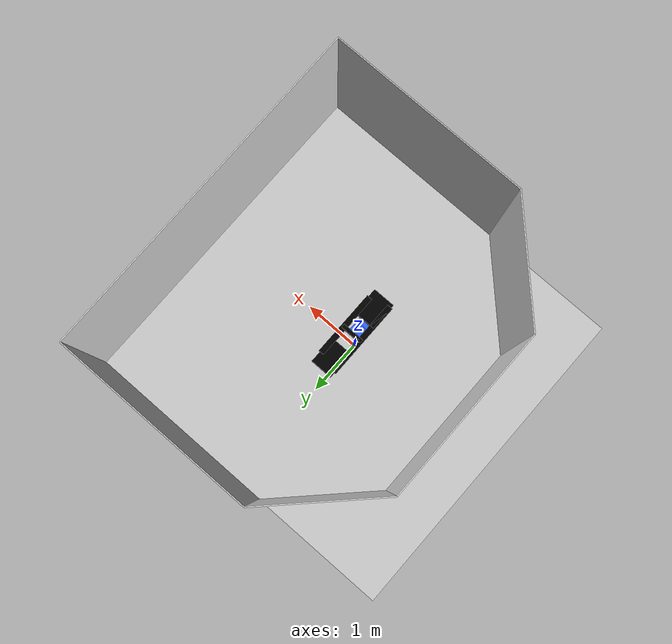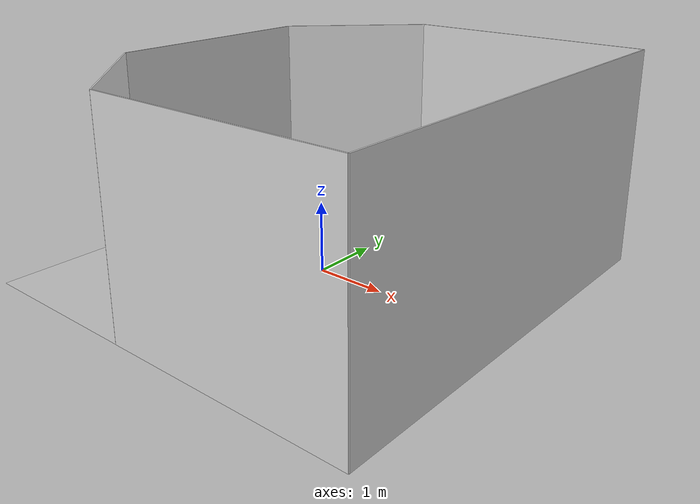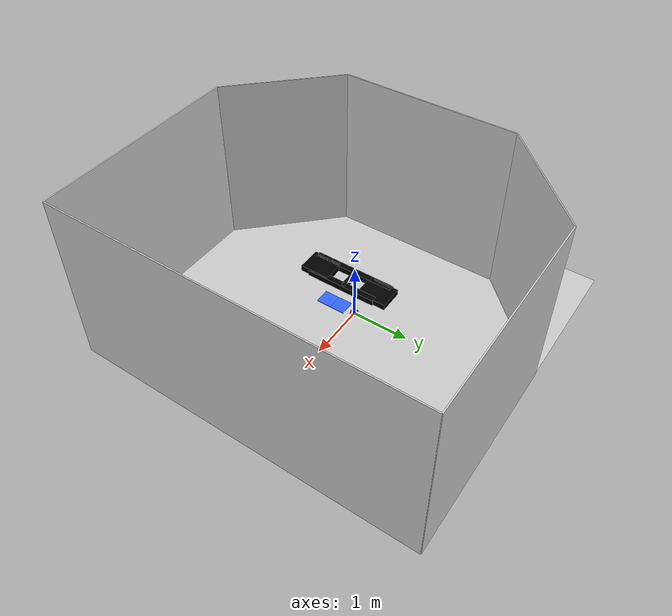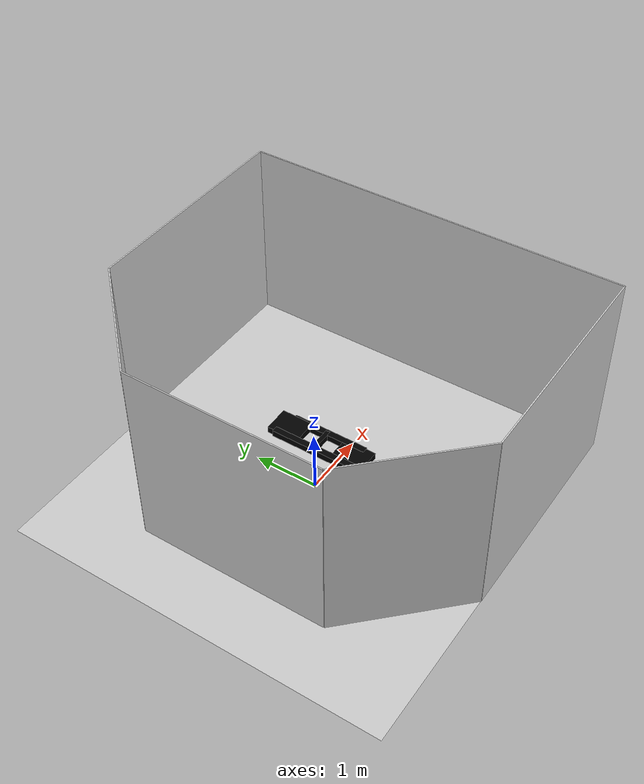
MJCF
<mujoco model="bins_arena">
  <asset>
    <texture builtin="gradient" height="256" rgb1=".9 .9 1." rgb2=".2 .3 .4" type="skybox" width="256"/>
    <texture file="../textures/light-gray-floor-tile.png" type="2d" name="texplane"/>
    <texture file="../textures/light-gray-plaster.png" type="2d" name="tex-light-gray-plaster"/>
    <material name="floorplane" reflectance="0.01" shininess="0.0" specular="0.0" texrepeat="2 2" texture="tex-light-gray-plaster" texuniform="true"/>
    <!-- steel legs -->
    <texture file="../textures/steel-brushed.png" type="cube" name="tex-steel-brushed"/>
    <material name="table_legs_metal" reflectance="0.8" shininess="0.8" texrepeat="1 1" texture="tex-steel-brushed" />
    <!-- plaster walls -->
    <texture file="../textures/light-gray-plaster.png" type="2d" name="tex-light-gray-plaster"/>
    <material name="walls_mat" reflectance="0.0" shininess="0.1" specular="0.1" texrepeat="3 3" texture="tex-light-gray-plaster" texuniform="true" />
    <!-- added table texture and material for domain randomization -->
    <texture  name="textable" builtin="flat" height="512" width="512" rgb1="0.5 0.5 0.5" rgb2="0.5 0.5 0.5"/>
    <material name="table_mat" texture="textable" />

    <!-- bins -->
    <texture file="../textures/light-wood.png" type="2d" name="tex-light-wood"/>
    <texture file="../textures/dark-wood.png" type="2d" name="tex-dark-wood"/>
    <material name="light-wood" reflectance="0" texrepeat="15 15" texture="tex-light-wood" texuniform="true"/>
    <material name="dark-wood" reflectance="0" texrepeat="5 5" texture="tex-dark-wood" texuniform="true"/>
    <material name="light-gray-plaster" reflectance="0" texrepeat="5 5" texture="tex-light-gray-plaster" texuniform="true"/>
    <material name="blue-plastic" rgba="0.2 0.4 1 1" specular="0.3" shininess="0.1" reflectance="0.1"/>
    <mesh file="../objects/meshes/bread.stl" name="bread_mesh" scale="0.8 0.8 0.8"/>
    <texture file="../textures/bread.png" type="2d" name="tex-bread" />
    <material name="bread" reflectance="0.7" texrepeat="15 15" texture="tex-bread" texuniform="true"/>
  </asset>

  <worldbody>

    <geom condim="3" group="1" material="floorplane" name="floor" pos="0 0 0" size="3 3 .125" type="plane"/>
    <!-- Walls (visual only) -->
    <geom pos="-1.25 2.25 1.5" quat="0.6532815 0.6532815 0.2705981 0.2705981" size="1.06 1.5 0.01" type="box" conaffinity="0" contype="0" group="1" name="wall_leftcorner_visual" material="walls_mat"/>
    <geom pos="-1.25 -2.25 1.5" quat="0.6532815 0.6532815 -0.2705981 -0.2705981" size="1.06 1.5 0.01" type="box" conaffinity="0" contype="0" group="1" name="wall_rightcorner_visual" material="walls_mat"/>
    <geom pos="1.25 3 1.5" quat="0.7071 0.7071 0 0" size="1.75 1.5 0.01" type="box" conaffinity="0" contype="0" group="1" name="wall_left_visual" material="walls_mat"/>
    <geom pos="1.25 -3 1.5" quat="0.7071 -0.7071 0 0" size="1.75 1.5 0.01" type="box" conaffinity="0" contype="0" group="1" name="wall_right_visual" material="walls_mat"/>
    <geom pos="-2 0 1.5" quat="0.5 0.5 0.5 0.5" size="1.5 1.5 0.01" type="box" conaffinity="0" contype="0" group="1" name="wall_rear_visual" material="walls_mat"/>
    <geom pos="3 0 1.5" quat="0.5 0.5 -0.5 -0.5" size="3 1.5 0.01" type="box" conaffinity="0" contype="0" group="1" name="wall_front_visual" material="walls_mat"/>

    <!-- Bin body template -->
    <body name="bin1" pos="0.1 -0.25 0.08">
    <!-- Bin floor -->

    <geom name="bin1_bottom" type="box" size="0.13 0.13 0.005" pos="0 0.05 0.08" material="blue-plastic" group="1"/>

    <!-- Bin walls -->
    </body>

    <body name="bin2" pos="0.1 -0.3 0.08">
    <geom name="bin2_bottom" type="box" size="0.13 0.13 0.005" pos="0 -0.15 0.08" material="blue-plastic" group="1"/>
    <site name="bin2_target"
              pos="0 0 0.05"
              size="0.02 0.02 0.02"
              rgba="1 0 0 1"
              type="sphere"/>
    </body>
    <body name="cube1">
    <geom name="cube1_geom" type="box" size="0.05 0.05 0.05" rgba="1 0 0 1" density="500" group="1"/>
    </body>
    <body name="cube2">
        <geom name="cube2_geom" type="box" size="0.05 0.05 0.05" rgba="0 1 0 1" density="500" group="1"/>
    </body>
    <body name="cube3">
        <geom name="cube3_geom" type="box" size="0.05 0.05 0.05" rgba="0 0 1 1" density="500" group="1"/>
    </body>

    <!--create table around bins-->
    <body name="table" pos="0.1 0.28 0.73">
    <geom name="table1" type="box" size="0.2 0.25 0.05" pos="0.0 -0.855 0.1" rgba="0 0 0 1" group="1"/>
    <geom name="table2" type="box" size="0.2 0.034 0.05" pos="0.0 -0.315 0.1" rgba="0 0 0 1" group="1"/>
    <geom name="table3" type="box" size="0.2 0.25 0.05" pos="0.0 0.2 0.1" rgba="0 0 0 1" group="1"/>
    <geom name="table4" type="box" size="0.05 0.6 0.05" pos="0.175 -0.35 0.1" rgba="0 0 0 1" group="1"/>
    <geom name="table5" type="box" size="0.05 0.7 0.05" pos="-0.175 -0.35 0.1" rgba="0 0 0 1" group="1"/>

    </body>

    <!-- front view -->
    <camera mode="fixed" name="frontview" pos="1.6 0 1.45" quat="0.56 0.43 0.43 0.56"/>
    <!-- bird view -->
    <camera mode="fixed" name="birdview" pos="-0.15 0 2.2" quat="0.7071 0 0 0.7071"/>
    <!-- agent view -->
    <camera mode="fixed" name="agentview" pos="1.0 0 1.75" quat="0.653 0.271 0.271 0.653"/>

    <camera name="left_side_view" mode="fixed" pos="0.45 -0.5 1.7579572214102434" euler="0.13 0.4 1"/>
    <camera name="right_side_view" mode="fixed" pos="0.55 0.28 1.7579572214102434" euler="-0.35 0.5 2.3"/>

  </worldbody>
</mujoco>
